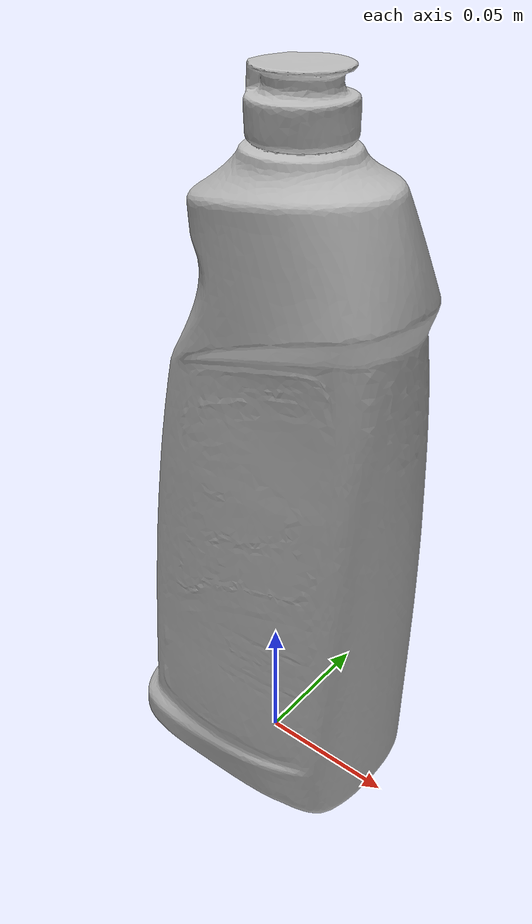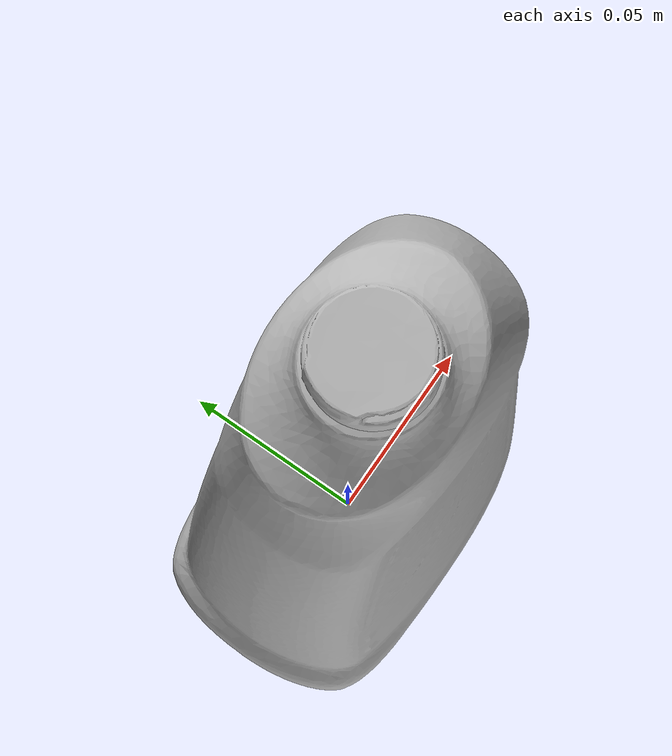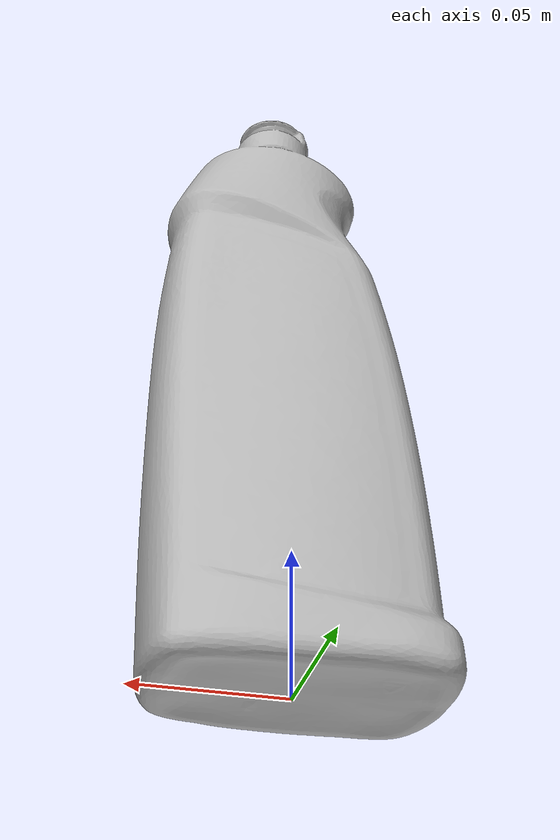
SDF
<?xml version="1.0" ?>
<sdf version='1.8'>
  <model name='ycb_021_bleach_cleanser'>
    <link name='body'>
      <inertial>
        <mass>1.131</mass>
        <pose>0.00448605072 -0.000129630159 0.100419962 0 0 0</pose>
        <inertia>
          <ixx>0.00492510383269</ixx>
          <ixy>3.99367495038e-06</ixy>
          <ixz>-0.000285046228375</ixz>
          <iyy>0.00531114048007</iyy>
          <iyz>2.47635981501e-06</iyz>
          <izz>0.000910303677148</izz>
        </inertia>
      </inertial>
      <visual name='ycb_021_bleach_cleanser_visual'>
        <pose>0.021625 -0.011704 0.000722 0 0 0</pose>
        <geometry>
          <mesh>
            <uri>model://ycb_021_bleach_cleanser/meshes/textured.dae</uri>
          </mesh>
        </geometry>
      </visual>
      <collision name='ycb_021_bleach_cleanser_collision'>
        <pose>0.021625 -0.011704 0.000722 0 0 0</pose>
        <geometry>
          <mesh>
            <uri>model://ycb_021_bleach_cleanser/meshes/nontextured.stl</uri>
          </mesh>
        </geometry>
        <max_contacts>10</max_contacts>
        <surface>
          <contact>
            <ode>
              <kp>1e15</kp>
              <kd>1e13</kd>
            </ode>
          </contact>
        </surface>
      </collision>
    </link>
  </model>
</sdf>
